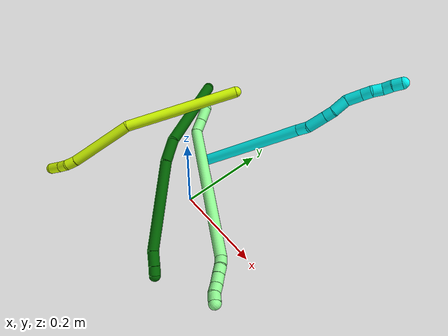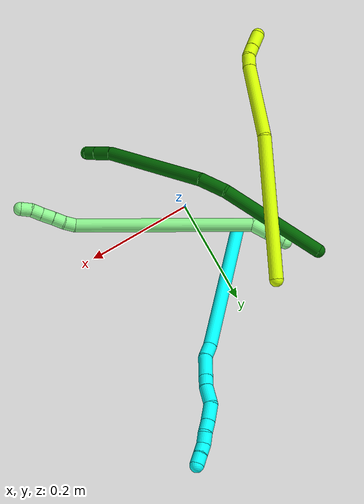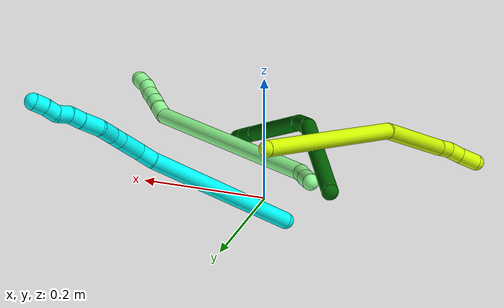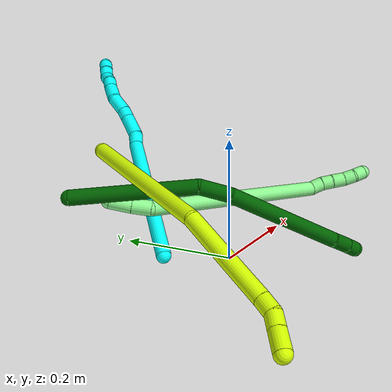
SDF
<sdf version="1.7">
 <world name="default">
  <model name="3">
   <static>0</static>
   <link name="3">
    <collision name="collision-cylinder-e_1_1_4">
     <pose>-0.007432 0.0337 0.125093 -0.263151 -0.057304 0.007586</pose>
     <geometry><cylinder><radius>0.0125</radius><length>0.259531</length></cylinder></geometry>
     <surface>
      <friction><ode><mu>1.16</mu><mu2>1.16</mu2><slip1>0</slip1><slip2>0</slip2></ode></friction>
      <contact><ode><kp>1e+06</kp><kd>1</kd><max_vel>0</max_vel><min_depth>0.001</min_depth></ode></contact>
     </surface>
    </collision>
    <visual name="visual-cylinder-e_1_1_4">
     <pose>-0.007432 0.0337 0.125093 -0.263151 -0.057304 0.007586</pose>
     <geometry><cylinder><radius>0.0125</radius><length>0.259531</length></cylinder></geometry>
     <material><ambient>0.003922 1 0.996078 1</ambient></material>
    </visual>
    <collision name="collision-cylinder-e_2_4_5">
     <pose>-0.013616 0.071825 0.262401 -0.347585 0.095783 -0.016828</pose>
     <geometry><cylinder><radius>0.0125</radius><length>0.026105</length></cylinder></geometry>
     <surface>
      <friction><ode><mu>1.16</mu><mu2>1.16</mu2><slip1>0</slip1><slip2>0</slip2></ode></friction>
      <contact><ode><kp>1e+06</kp><kd>1</kd><max_vel>0</max_vel><min_depth>0.001</min_depth></ode></contact>
     </surface>
    </collision>
    <visual name="visual-cylinder-e_2_4_5">
     <pose>-0.013616 0.071825 0.262401 -0.347585 0.095783 -0.016828</pose>
     <geometry><cylinder><radius>0.0125</radius><length>0.026105</length></cylinder></geometry>
     <material><ambient>0.003922 1 0.996078 1</ambient></material>
    </visual>
    <collision name="collision-cylinder-e_3_5_6">
     <pose>-0.013195 0.076774 0.296026 -0.02443 -0.03864 0.000472</pose>
     <geometry><cylinder><radius>0.0125</radius><length>0.042865</length></cylinder></geometry>
     <surface>
      <friction><ode><mu>1.16</mu><mu2>1.16</mu2><slip1>0</slip1><slip2>0</slip2></ode></friction>
      <contact><ode><kp>1e+06</kp><kd>1</kd><max_vel>0</max_vel><min_depth>0.001</min_depth></ode></contact>
     </surface>
    </collision>
    <visual name="visual-cylinder-e_3_5_6">
     <pose>-0.013195 0.076774 0.296026 -0.02443 -0.03864 0.000472</pose>
     <geometry><cylinder><radius>0.0125</radius><length>0.042865</length></cylinder></geometry>
     <material><ambient>0.003922 1 0.996078 1</ambient></material>
    </visual>
    <collision name="collision-cylinder-e_4_6_7">
     <pose>-0.014395 0.077422 0.327651 -0.012217 -0.036416 0.000222</pose>
     <geometry><cylinder><radius>0.0125</radius><length>0.020445</length></cylinder></geometry>
     <surface>
      <friction><ode><mu>1.16</mu><mu2>1.16</mu2><slip1>0</slip1><slip2>0</slip2></ode></friction>
      <contact><ode><kp>1e+06</kp><kd>1</kd><max_vel>0</max_vel><min_depth>0.001</min_depth></ode></contact>
     </surface>
    </collision>
    <visual name="visual-cylinder-e_4_6_7">
     <pose>-0.014395 0.077422 0.327651 -0.012217 -0.036416 0.000222</pose>
     <geometry><cylinder><radius>0.0125</radius><length>0.020445</length></cylinder></geometry>
     <material><ambient>0.003922 1 0.996078 1</ambient></material>
    </visual>
    <collision name="collision-cylinder-e_5_7_8">
     <pose>-0.016578 0.074567 0.354916 0.173028 -0.104216 -0.009047</pose>
     <geometry><cylinder><radius>0.0125</radius><length>0.034804</length></cylinder></geometry>
     <surface>
      <friction><ode><mu>1.16</mu><mu2>1.16</mu2><slip1>0</slip1><slip2>0</slip2></ode></friction>
      <contact><ode><kp>1e+06</kp><kd>1</kd><max_vel>0</max_vel><min_depth>0.001</min_depth></ode></contact>
     </surface>
    </collision>
    <visual name="visual-cylinder-e_5_7_8">
     <pose>-0.016578 0.074567 0.354916 0.173028 -0.104216 -0.009047</pose>
     <geometry><cylinder><radius>0.0125</radius><length>0.034804</length></cylinder></geometry>
     <material><ambient>0.003922 1 0.996078 1</ambient></material>
    </visual>
    <collision name="collision-cylinder-e_6_8_9">
     <pose>-0.020174 0.075298 0.388132 -0.225628 -0.10724 0.012161</pose>
     <geometry><cylinder><radius>0.0125</radius><length>0.033366</length></cylinder></geometry>
     <surface>
      <friction><ode><mu>1.16</mu><mu2>1.16</mu2><slip1>0</slip1><slip2>0</slip2></ode></friction>
      <contact><ode><kp>1e+06</kp><kd>1</kd><max_vel>0</max_vel><min_depth>0.001</min_depth></ode></contact>
     </surface>
    </collision>
    <visual name="visual-cylinder-e_6_8_9">
     <pose>-0.020174 0.075298 0.388132 -0.225628 -0.10724 0.012161</pose>
     <geometry><cylinder><radius>0.0125</radius><length>0.033366</length></cylinder></geometry>
     <material><ambient>0.003922 1 0.996078 1</ambient></material>
    </visual>
    <collision name="collision-cylinder-e_7_9_10">
     <pose>-0.02223 0.081791 0.414311 -0.271005 -0.025998 0.003545</pose>
     <geometry><cylinder><radius>0.0125</radius><length>0.020792</length></cylinder></geometry>
     <surface>
      <friction><ode><mu>1.16</mu><mu2>1.16</mu2><slip1>0</slip1><slip2>0</slip2></ode></friction>
      <contact><ode><kp>1e+06</kp><kd>1</kd><max_vel>0</max_vel><min_depth>0.001</min_depth></ode></contact>
     </surface>
    </collision>
    <visual name="visual-cylinder-e_7_9_10">
     <pose>-0.02223 0.081791 0.414311 -0.271005 -0.025998 0.003545</pose>
     <geometry><cylinder><radius>0.0125</radius><length>0.020792</length></cylinder></geometry>
     <material><ambient>0.003922 1 0.996078 1</ambient></material>
    </visual>
    <collision name="collision-cylinder-e_8_10_11">
     <pose>-0.026505 0.087522 0.433984 -0.296323 -0.377509 0.057009</pose>
     <geometry><cylinder><radius>0.0125</radius><length>0.021729</length></cylinder></geometry>
     <surface>
      <friction><ode><mu>1.16</mu><mu2>1.16</mu2><slip1>0</slip1><slip2>0</slip2></ode></friction>
      <contact><ode><kp>1e+06</kp><kd>1</kd><max_vel>0</max_vel><min_depth>0.001</min_depth></ode></contact>
     </surface>
    </collision>
    <visual name="visual-cylinder-e_8_10_11">
     <pose>-0.026505 0.087522 0.433984 -0.296323 -0.377509 0.057009</pose>
     <geometry><cylinder><radius>0.0125</radius><length>0.021729</length></cylinder></geometry>
     <material><ambient>0.003922 1 0.996078 1</ambient></material>
    </visual>
    <collision name="collision-cylinder-e_9_11_12">
     <pose>-0.029569 0.093422 0.453235 -0.298504 0.093449 -0.014062</pose>
     <geometry><cylinder><radius>0.0125</radius><length>0.020158</length></cylinder></geometry>
     <surface>
      <friction><ode><mu>1.16</mu><mu2>1.16</mu2><slip1>0</slip1><slip2>0</slip2></ode></friction>
      <contact><ode><kp>1e+06</kp><kd>1</kd><max_vel>0</max_vel><min_depth>0.001</min_depth></ode></contact>
     </surface>
    </collision>
    <visual name="visual-cylinder-e_9_11_12">
     <pose>-0.029569 0.093422 0.453235 -0.298504 0.093449 -0.014062</pose>
     <geometry><cylinder><radius>0.0125</radius><length>0.020158</length></cylinder></geometry>
     <material><ambient>0.003922 1 0.996078 1</ambient></material>
    </visual>
    <collision name="collision-cylinder-e_10_12_2">
     <pose>-0.029263 0.099896 0.472273 -0.356932 -0.062827 0.011337</pose>
     <geometry><cylinder><radius>0.0125</radius><length>0.020205</length></cylinder></geometry>
     <surface>
      <friction><ode><mu>1.16</mu><mu2>1.16</mu2><slip1>0</slip1><slip2>0</slip2></ode></friction>
      <contact><ode><kp>1e+06</kp><kd>1</kd><max_vel>0</max_vel><min_depth>0.001</min_depth></ode></contact>
     </surface>
    </collision>
    <visual name="visual-cylinder-e_10_12_2">
     <pose>-0.029263 0.099896 0.472273 -0.356932 -0.062827 0.011337</pose>
     <geometry><cylinder><radius>0.0125</radius><length>0.020205</length></cylinder></geometry>
     <material><ambient>0.003922 1 0.996078 1</ambient></material>
    </visual>
    <collision name="collision-sphere-2">
     <pose>-0.029897 0.103419 0.48172 0 -0 0</pose>
     <geometry><sphere><radius>0.0125</radius></sphere></geometry>
     <surface>
      <friction><ode><mu>1.16</mu><mu2>1.16</mu2><slip1>0</slip1><slip2>0</slip2></ode></friction>
      <contact><ode><kp>1e+06</kp><kd>1</kd><max_vel>0</max_vel><min_depth>0.001</min_depth></ode></contact>
     </surface>
    </collision>
    <visual name="visual-sphere-2">
     <pose>-0.029897 0.103419 0.48172 0 -0 0</pose>
     <geometry><sphere><radius>0.0125</radius></sphere></geometry>
     <material><ambient>0.003922 1 0.996078 1</ambient></material>
    </visual>
    <collision name="collision-sphere-12">
     <pose>-0.028628 0.096374 0.462826 0 -0 0</pose>
     <geometry><sphere><radius>0.0125</radius></sphere></geometry>
     <surface>
      <friction><ode><mu>1.16</mu><mu2>1.16</mu2><slip1>0</slip1><slip2>0</slip2></ode></friction>
      <contact><ode><kp>1e+06</kp><kd>1</kd><max_vel>0</max_vel><min_depth>0.001</min_depth></ode></contact>
     </surface>
    </collision>
    <visual name="visual-sphere-12">
     <pose>-0.028628 0.096374 0.462826 0 -0 0</pose>
     <geometry><sphere><radius>0.0125</radius></sphere></geometry>
     <material><ambient>0.003922 1 0.996078 1</ambient></material>
    </visual>
    <collision name="collision-sphere-11">
     <pose>-0.030509 0.090471 0.443643 0 -0 0</pose>
     <geometry><sphere><radius>0.0125</radius></sphere></geometry>
     <surface>
      <friction><ode><mu>1.16</mu><mu2>1.16</mu2><slip1>0</slip1><slip2>0</slip2></ode></friction>
      <contact><ode><kp>1e+06</kp><kd>1</kd><max_vel>0</max_vel><min_depth>0.001</min_depth></ode></contact>
     </surface>
    </collision>
    <visual name="visual-sphere-11">
     <pose>-0.030509 0.090471 0.443643 0 -0 0</pose>
     <geometry><sphere><radius>0.0125</radius></sphere></geometry>
     <material><ambient>0.003922 1 0.996078 1</ambient></material>
    </visual>
    <collision name="collision-sphere-10">
     <pose>-0.0225 0.084573 0.424325 0 -0 0</pose>
     <geometry><sphere><radius>0.0125</radius></sphere></geometry>
     <surface>
      <friction><ode><mu>1.16</mu><mu2>1.16</mu2><slip1>0</slip1><slip2>0</slip2></ode></friction>
      <contact><ode><kp>1e+06</kp><kd>1</kd><max_vel>0</max_vel><min_depth>0.001</min_depth></ode></contact>
     </surface>
    </collision>
    <visual name="visual-sphere-10">
     <pose>-0.0225 0.084573 0.424325 0 -0 0</pose>
     <geometry><sphere><radius>0.0125</radius></sphere></geometry>
     <material><ambient>0.003922 1 0.996078 1</ambient></material>
    </visual>
    <collision name="collision-sphere-9">
     <pose>-0.02196 0.079009 0.404298 0 -0 0</pose>
     <geometry><sphere><radius>0.0125</radius></sphere></geometry>
     <surface>
      <friction><ode><mu>1.16</mu><mu2>1.16</mu2><slip1>0</slip1><slip2>0</slip2></ode></friction>
      <contact><ode><kp>1e+06</kp><kd>1</kd><max_vel>0</max_vel><min_depth>0.001</min_depth></ode></contact>
     </surface>
    </collision>
    <visual name="visual-sphere-9">
     <pose>-0.02196 0.079009 0.404298 0 -0 0</pose>
     <geometry><sphere><radius>0.0125</radius></sphere></geometry>
     <material><ambient>0.003922 1 0.996078 1</ambient></material>
    </visual>
    <collision name="collision-sphere-4">
     <pose>-0.014864 0.0674 0.250185 0 -0 0</pose>
     <geometry><sphere><radius>0.0125</radius></sphere></geometry>
     <surface>
      <friction><ode><mu>1.16</mu><mu2>1.16</mu2><slip1>0</slip1><slip2>0</slip2></ode></friction>
      <contact><ode><kp>1e+06</kp><kd>1</kd><max_vel>0</max_vel><min_depth>0.001</min_depth></ode></contact>
     </surface>
    </collision>
    <visual name="visual-sphere-4">
     <pose>-0.014864 0.0674 0.250185 0 -0 0</pose>
     <geometry><sphere><radius>0.0125</radius></sphere></geometry>
     <material><ambient>0.003922 1 0.996078 1</ambient></material>
    </visual>
    <collision name="collision-sphere-1">
     <geometry><sphere><radius>0.0125</radius></sphere></geometry>
     <surface>
      <friction><ode><mu>1.16</mu><mu2>1.16</mu2><slip1>0</slip1><slip2>0</slip2></ode></friction>
      <contact><ode><kp>1e+06</kp><kd>1</kd><max_vel>0</max_vel><min_depth>0.001</min_depth></ode></contact>
     </surface>
    </collision>
    <visual name="visual-sphere-1">
     <geometry><sphere><radius>0.0125</radius></sphere></geometry>
     <material><ambient>0.003922 1 0.996078 1</ambient></material>
    </visual>
    <collision name="collision-sphere-8">
     <pose>-0.018388 0.071587 0.371965 0 -0 0</pose>
     <geometry><sphere><radius>0.0125</radius></sphere></geometry>
     <surface>
      <friction><ode><mu>1.16</mu><mu2>1.16</mu2><slip1>0</slip1><slip2>0</slip2></ode></friction>
      <contact><ode><kp>1e+06</kp><kd>1</kd><max_vel>0</max_vel><min_depth>0.001</min_depth></ode></contact>
     </surface>
    </collision>
    <visual name="visual-sphere-8">
     <pose>-0.018388 0.071587 0.371965 0 -0 0</pose>
     <geometry><sphere><radius>0.0125</radius></sphere></geometry>
     <material><ambient>0.003922 1 0.996078 1</ambient></material>
    </visual>
    <collision name="collision-sphere-5">
     <pose>-0.012367 0.076251 0.274616 0 -0 0</pose>
     <geometry><sphere><radius>0.0125</radius></sphere></geometry>
     <surface>
      <friction><ode><mu>1.16</mu><mu2>1.16</mu2><slip1>0</slip1><slip2>0</slip2></ode></friction>
      <contact><ode><kp>1e+06</kp><kd>1</kd><max_vel>0</max_vel><min_depth>0.001</min_depth></ode></contact>
     </surface>
    </collision>
    <visual name="visual-sphere-5">
     <pose>-0.012367 0.076251 0.274616 0 -0 0</pose>
     <geometry><sphere><radius>0.0125</radius></sphere></geometry>
     <material><ambient>0.003922 1 0.996078 1</ambient></material>
    </visual>
    <collision name="collision-sphere-6">
     <pose>-0.014023 0.077297 0.317436 0 -0 0</pose>
     <geometry><sphere><radius>0.0125</radius></sphere></geometry>
     <surface>
      <friction><ode><mu>1.16</mu><mu2>1.16</mu2><slip1>0</slip1><slip2>0</slip2></ode></friction>
      <contact><ode><kp>1e+06</kp><kd>1</kd><max_vel>0</max_vel><min_depth>0.001</min_depth></ode></contact>
     </surface>
    </collision>
    <visual name="visual-sphere-6">
     <pose>-0.014023 0.077297 0.317436 0 -0 0</pose>
     <geometry><sphere><radius>0.0125</radius></sphere></geometry>
     <material><ambient>0.003922 1 0.996078 1</ambient></material>
    </visual>
    <collision name="collision-sphere-7">
     <pose>-0.014768 0.077547 0.337866 0 -0 0</pose>
     <geometry><sphere><radius>0.0125</radius></sphere></geometry>
     <surface>
      <friction><ode><mu>1.16</mu><mu2>1.16</mu2><slip1>0</slip1><slip2>0</slip2></ode></friction>
      <contact><ode><kp>1e+06</kp><kd>1</kd><max_vel>0</max_vel><min_depth>0.001</min_depth></ode></contact>
     </surface>
    </collision>
    <visual name="visual-sphere-7">
     <pose>-0.014768 0.077547 0.337866 0 -0 0</pose>
     <geometry><sphere><radius>0.0125</radius></sphere></geometry>
     <material><ambient>0.003922 1 0.996078 1</ambient></material>
    </visual>
    <inertial>
     <pose>-0.013239 0.056213 0.241459 0 -0 0</pose>
     <mass>0.5</mass>
     <inertia>
      <ixx>0.001501</ixx>
      <ixy>0</ixy>
      <ixz>0</ixz>
      <iyy>0.001463</iyy>
      <iyz>0</iyz>
      <izz>-0.000261</izz>
     </inertia>
    </inertial>
   </link>
   <pose>-0.064577 0.087558 0.011498 -0.283644 -0.801096 -1.68131</pose>
  </model>
  <model name="6">
   <static>0</static>
   <link name="6">
    <collision name="collision-cylinder-e_1_1_4">
     <pose>0.054782 -0.074267 0.039167 1.08548 0.578096 0.354958</pose>
     <geometry><cylinder><radius>0.0125</radius><length>0.200507</length></cylinder></geometry>
     <surface>
      <friction><ode><mu>1.16</mu><mu2>1.16</mu2><slip1>0</slip1><slip2>0</slip2></ode></friction>
      <contact><ode><kp>1e+06</kp><kd>1</kd><max_vel>0</max_vel><min_depth>0.001</min_depth></ode></contact>
     </surface>
    </collision>
    <visual name="visual-cylinder-e_1_1_4">
     <pose>0.054782 -0.074267 0.039167 1.08548 0.578096 0.354958</pose>
     <geometry><cylinder><radius>0.0125</radius><length>0.200507</length></cylinder></geometry>
     <material><ambient>0 0.392157 0.003922 1</ambient></material>
    </visual>
    <collision name="collision-cylinder-e_2_4_5">
     <pose>0.128273 -0.159441 0.092396 0.659697 0.810457 0.291636</pose>
     <geometry><cylinder><radius>0.0125</radius><length>0.051643</length></cylinder></geometry>
     <surface>
      <friction><ode><mu>1.16</mu><mu2>1.16</mu2><slip1>0</slip1><slip2>0</slip2></ode></friction>
      <contact><ode><kp>1e+06</kp><kd>1</kd><max_vel>0</max_vel><min_depth>0.001</min_depth></ode></contact>
     </surface>
    </collision>
    <visual name="visual-cylinder-e_2_4_5">
     <pose>0.128273 -0.159441 0.092396 0.659697 0.810457 0.291636</pose>
     <geometry><cylinder><radius>0.0125</radius><length>0.051643</length></cylinder></geometry>
     <material><ambient>0 0.392157 0.003922 1</ambient></material>
    </visual>
    <collision name="collision-cylinder-e_3_5_6">
     <pose>0.218146 -0.192779 0.169665 0.341019 0.815002 0.148376</pose>
     <geometry><cylinder><radius>0.0125</radius><length>0.195576</length></cylinder></geometry>
     <surface>
      <friction><ode><mu>1.16</mu><mu2>1.16</mu2><slip1>0</slip1><slip2>0</slip2></ode></friction>
      <contact><ode><kp>1e+06</kp><kd>1</kd><max_vel>0</max_vel><min_depth>0.001</min_depth></ode></contact>
     </surface>
    </collision>
    <visual name="visual-cylinder-e_3_5_6">
     <pose>0.218146 -0.192779 0.169665 0.341019 0.815002 0.148376</pose>
     <geometry><cylinder><radius>0.0125</radius><length>0.195576</length></cylinder></geometry>
     <material><ambient>0 0.392157 0.003922 1</ambient></material>
    </visual>
    <collision name="collision-cylinder-e_4_6_7">
     <pose>0.298656 -0.21748 0.245723 0.174864 0.621523 0.056289</pose>
     <geometry><cylinder><radius>0.0125</radius><length>0.032103</length></cylinder></geometry>
     <surface>
      <friction><ode><mu>1.16</mu><mu2>1.16</mu2><slip1>0</slip1><slip2>0</slip2></ode></friction>
      <contact><ode><kp>1e+06</kp><kd>1</kd><max_vel>0</max_vel><min_depth>0.001</min_depth></ode></contact>
     </surface>
    </collision>
    <visual name="visual-cylinder-e_4_6_7">
     <pose>0.298656 -0.21748 0.245723 0.174864 0.621523 0.056289</pose>
     <geometry><cylinder><radius>0.0125</radius><length>0.032103</length></cylinder></geometry>
     <material><ambient>0 0.392157 0.003922 1</ambient></material>
    </visual>
    <collision name="collision-cylinder-e_5_7_2">
     <pose>0.314177 -0.22093 0.26646 0.148459 0.658895 0.050842</pose>
     <geometry><cylinder><radius>0.0125</radius><length>0.020172</length></cylinder></geometry>
     <surface>
      <friction><ode><mu>1.16</mu><mu2>1.16</mu2><slip1>0</slip1><slip2>0</slip2></ode></friction>
      <contact><ode><kp>1e+06</kp><kd>1</kd><max_vel>0</max_vel><min_depth>0.001</min_depth></ode></contact>
     </surface>
    </collision>
    <visual name="visual-cylinder-e_5_7_2">
     <pose>0.314177 -0.22093 0.26646 0.148459 0.658895 0.050842</pose>
     <geometry><cylinder><radius>0.0125</radius><length>0.020172</length></cylinder></geometry>
     <material><ambient>0 0.392157 0.003922 1</ambient></material>
    </visual>
    <collision name="collision-sphere-2">
     <pose>0.320352 -0.22211 0.274347 0 -0 0</pose>
     <geometry><sphere><radius>0.0125</radius></sphere></geometry>
     <surface>
      <friction><ode><mu>1.16</mu><mu2>1.16</mu2><slip1>0</slip1><slip2>0</slip2></ode></friction>
      <contact><ode><kp>1e+06</kp><kd>1</kd><max_vel>0</max_vel><min_depth>0.001</min_depth></ode></contact>
     </surface>
    </collision>
    <visual name="visual-sphere-2">
     <pose>0.320352 -0.22211 0.274347 0 -0 0</pose>
     <geometry><sphere><radius>0.0125</radius></sphere></geometry>
     <material><ambient>0 0.392157 0.003922 1</ambient></material>
    </visual>
    <collision name="collision-sphere-7">
     <pose>0.308002 -0.219751 0.258573 0 -0 0</pose>
     <geometry><sphere><radius>0.0125</radius></sphere></geometry>
     <surface>
      <friction><ode><mu>1.16</mu><mu2>1.16</mu2><slip1>0</slip1><slip2>0</slip2></ode></friction>
      <contact><ode><kp>1e+06</kp><kd>1</kd><max_vel>0</max_vel><min_depth>0.001</min_depth></ode></contact>
     </surface>
    </collision>
    <visual name="visual-sphere-7">
     <pose>0.308002 -0.219751 0.258573 0 -0 0</pose>
     <geometry><sphere><radius>0.0125</radius></sphere></geometry>
     <material><ambient>0 0.392157 0.003922 1</ambient></material>
    </visual>
    <collision name="collision-sphere-6">
     <pose>0.289309 -0.21521 0.232872 0 -0 0</pose>
     <geometry><sphere><radius>0.0125</radius></sphere></geometry>
     <surface>
      <friction><ode><mu>1.16</mu><mu2>1.16</mu2><slip1>0</slip1><slip2>0</slip2></ode></friction>
      <contact><ode><kp>1e+06</kp><kd>1</kd><max_vel>0</max_vel><min_depth>0.001</min_depth></ode></contact>
     </surface>
    </collision>
    <visual name="visual-sphere-6">
     <pose>0.289309 -0.21521 0.232872 0 -0 0</pose>
     <geometry><sphere><radius>0.0125</radius></sphere></geometry>
     <material><ambient>0 0.392157 0.003922 1</ambient></material>
    </visual>
    <collision name="collision-sphere-5">
     <pose>0.146983 -0.170347 0.106457 0 -0 0</pose>
     <geometry><sphere><radius>0.0125</radius></sphere></geometry>
     <surface>
      <friction><ode><mu>1.16</mu><mu2>1.16</mu2><slip1>0</slip1><slip2>0</slip2></ode></friction>
      <contact><ode><kp>1e+06</kp><kd>1</kd><max_vel>0</max_vel><min_depth>0.001</min_depth></ode></contact>
     </surface>
    </collision>
    <visual name="visual-sphere-5">
     <pose>0.146983 -0.170347 0.106457 0 -0 0</pose>
     <geometry><sphere><radius>0.0125</radius></sphere></geometry>
     <material><ambient>0 0.392157 0.003922 1</ambient></material>
    </visual>
    <collision name="collision-sphere-1">
     <geometry><sphere><radius>0.0125</radius></sphere></geometry>
     <surface>
      <friction><ode><mu>1.16</mu><mu2>1.16</mu2><slip1>0</slip1><slip2>0</slip2></ode></friction>
      <contact><ode><kp>1e+06</kp><kd>1</kd><max_vel>0</max_vel><min_depth>0.001</min_depth></ode></contact>
     </surface>
    </collision>
    <visual name="visual-sphere-1">
     <geometry><sphere><radius>0.0125</radius></sphere></geometry>
     <material><ambient>0 0.392157 0.003922 1</ambient></material>
    </visual>
    <collision name="collision-sphere-4">
     <pose>0.109563 -0.148535 0.078335 0 -0 0</pose>
     <geometry><sphere><radius>0.0125</radius></sphere></geometry>
     <surface>
      <friction><ode><mu>1.16</mu><mu2>1.16</mu2><slip1>0</slip1><slip2>0</slip2></ode></friction>
      <contact><ode><kp>1e+06</kp><kd>1</kd><max_vel>0</max_vel><min_depth>0.001</min_depth></ode></contact>
     </surface>
    </collision>
    <visual name="visual-sphere-4">
     <pose>0.109563 -0.148535 0.078335 0 -0 0</pose>
     <geometry><sphere><radius>0.0125</radius></sphere></geometry>
     <material><ambient>0 0.392157 0.003922 1</ambient></material>
    </visual>
    <inertial>
     <pose>0.152396 -0.144532 0.118141 0 -0 0</pose>
     <mass>0.5</mass>
     <inertia>
      <ixx>0.001265</ixx>
      <ixy>0</ixy>
      <ixz>0</ixz>
      <iyy>0.001287</iyy>
      <iyz>0</iyz>
      <izz>-0.000168</izz>
     </inertia>
    </inertial>
   </link>
   <pose>-0.167703 0.19162 0.121654 -1.83896 0.735879 -1.70193</pose>
  </model>
  <model name="13">
   <static>0</static>
   <link name="13">
    <collision name="collision-cylinder-e_1_1_4">
     <pose>0.008145 -0.015574 -0.003712 1.80476 0.470633 0.589538</pose>
     <geometry><cylinder><radius>0.0125</radius><length>0.035925</length></cylinder></geometry>
     <surface>
      <friction><ode><mu>1.16</mu><mu2>1.16</mu2><slip1>0</slip1><slip2>0</slip2></ode></friction>
      <contact><ode><kp>1e+06</kp><kd>1</kd><max_vel>0</max_vel><min_depth>0.001</min_depth></ode></contact>
     </surface>
    </collision>
    <visual name="visual-cylinder-e_1_1_4">
     <pose>0.008145 -0.015574 -0.003712 1.80476 0.470633 0.589538</pose>
     <geometry><cylinder><radius>0.0125</radius><length>0.035925</length></cylinder></geometry>
     <material><ambient>0.564706 0.984314 0.572549 1</ambient></material>
    </visual>
    <collision name="collision-cylinder-e_2_4_5">
     <pose>0.024227 -0.044527 -0.009895 1.75349 0.528055 0.628212</pose>
     <geometry><cylinder><radius>0.0125</radius><length>0.031503</length></cylinder></geometry>
     <surface>
      <friction><ode><mu>1.16</mu><mu2>1.16</mu2><slip1>0</slip1><slip2>0</slip2></ode></friction>
      <contact><ode><kp>1e+06</kp><kd>1</kd><max_vel>0</max_vel><min_depth>0.001</min_depth></ode></contact>
     </surface>
    </collision>
    <visual name="visual-cylinder-e_2_4_5">
     <pose>0.024227 -0.044527 -0.009895 1.75349 0.528055 0.628212</pose>
     <geometry><cylinder><radius>0.0125</radius><length>0.031503</length></cylinder></geometry>
     <material><ambient>0.564706 0.984314 0.572549 1</ambient></material>
    </visual>
    <collision name="collision-cylinder-e_3_5_6">
     <pose>0.158936 -0.138059 -0.076427 2.24506 0.890366 1.56289</pose>
     <geometry><cylinder><radius>0.0125</radius><length>0.326187</length></cylinder></geometry>
     <surface>
      <friction><ode><mu>1.16</mu><mu2>1.16</mu2><slip1>0</slip1><slip2>0</slip2></ode></friction>
      <contact><ode><kp>1e+06</kp><kd>1</kd><max_vel>0</max_vel><min_depth>0.001</min_depth></ode></contact>
     </surface>
    </collision>
    <visual name="visual-cylinder-e_3_5_6">
     <pose>0.158936 -0.138059 -0.076427 2.24506 0.890366 1.56289</pose>
     <geometry><cylinder><radius>0.0125</radius><length>0.326187</length></cylinder></geometry>
     <material><ambient>0.564706 0.984314 0.572549 1</ambient></material>
    </visual>
    <collision name="collision-cylinder-e_4_6_7">
     <pose>0.295379 -0.223611 -0.139975 1.47637 1.05963 0.979118</pose>
     <geometry><cylinder><radius>0.0125</radius><length>0.022174</length></cylinder></geometry>
     <surface>
      <friction><ode><mu>1.16</mu><mu2>1.16</mu2><slip1>0</slip1><slip2>0</slip2></ode></friction>
      <contact><ode><kp>1e+06</kp><kd>1</kd><max_vel>0</max_vel><min_depth>0.001</min_depth></ode></contact>
     </surface>
    </collision>
    <visual name="visual-cylinder-e_4_6_7">
     <pose>0.295379 -0.223611 -0.139975 1.47637 1.05963 0.979118</pose>
     <geometry><cylinder><radius>0.0125</radius><length>0.022174</length></cylinder></geometry>
     <material><ambient>0.564706 0.984314 0.572549 1</ambient></material>
    </visual>
    <collision name="collision-cylinder-e_5_7_8">
     <pose>0.312686 -0.235762 -0.139447 1.56835 0.846919 0.845092</pose>
     <geometry><cylinder><radius>0.0125</radius><length>0.020388</length></cylinder></geometry>
     <surface>
      <friction><ode><mu>1.16</mu><mu2>1.16</mu2><slip1>0</slip1><slip2>0</slip2></ode></friction>
      <contact><ode><kp>1e+06</kp><kd>1</kd><max_vel>0</max_vel><min_depth>0.001</min_depth></ode></contact>
     </surface>
    </collision>
    <visual name="visual-cylinder-e_5_7_8">
     <pose>0.312686 -0.235762 -0.139447 1.56835 0.846919 0.845092</pose>
     <geometry><cylinder><radius>0.0125</radius><length>0.020388</length></cylinder></geometry>
     <material><ambient>0.564706 0.984314 0.572549 1</ambient></material>
    </visual>
    <collision name="collision-cylinder-e_6_8_9">
     <pose>0.32908 -0.250039 -0.139977 1.64325 0.859567 0.915793</pose>
     <geometry><cylinder><radius>0.0125</radius><length>0.023117</length></cylinder></geometry>
     <surface>
      <friction><ode><mu>1.16</mu><mu2>1.16</mu2><slip1>0</slip1><slip2>0</slip2></ode></friction>
      <contact><ode><kp>1e+06</kp><kd>1</kd><max_vel>0</max_vel><min_depth>0.001</min_depth></ode></contact>
     </surface>
    </collision>
    <visual name="visual-cylinder-e_6_8_9">
     <pose>0.32908 -0.250039 -0.139977 1.64325 0.859567 0.915793</pose>
     <geometry><cylinder><radius>0.0125</radius><length>0.023117</length></cylinder></geometry>
     <material><ambient>0.564706 0.984314 0.572549 1</ambient></material>
    </visual>
    <collision name="collision-cylinder-e_7_9_10">
     <pose>0.345875 -0.263756 -0.139537 1.41292 0.908405 0.789582</pose>
     <geometry><cylinder><radius>0.0125</radius><length>0.020389</length></cylinder></geometry>
     <surface>
      <friction><ode><mu>1.16</mu><mu2>1.16</mu2><slip1>0</slip1><slip2>0</slip2></ode></friction>
      <contact><ode><kp>1e+06</kp><kd>1</kd><max_vel>0</max_vel><min_depth>0.001</min_depth></ode></contact>
     </surface>
    </collision>
    <visual name="visual-cylinder-e_7_9_10">
     <pose>0.345875 -0.263756 -0.139537 1.41292 0.908405 0.789582</pose>
     <geometry><cylinder><radius>0.0125</radius><length>0.020389</length></cylinder></geometry>
     <material><ambient>0.564706 0.984314 0.572549 1</ambient></material>
    </visual>
    <collision name="collision-cylinder-e_8_10_2">
     <pose>0.362886 -0.274524 -0.139875 1.85217 1.08266 1.34903</pose>
     <geometry><cylinder><radius>0.0125</radius><length>0.020317</length></cylinder></geometry>
     <surface>
      <friction><ode><mu>1.16</mu><mu2>1.16</mu2><slip1>0</slip1><slip2>0</slip2></ode></friction>
      <contact><ode><kp>1e+06</kp><kd>1</kd><max_vel>0</max_vel><min_depth>0.001</min_depth></ode></contact>
     </surface>
    </collision>
    <visual name="visual-cylinder-e_8_10_2">
     <pose>0.362886 -0.274524 -0.139875 1.85217 1.08266 1.34903</pose>
     <geometry><cylinder><radius>0.0125</radius><length>0.020317</length></cylinder></geometry>
     <material><ambient>0.564706 0.984314 0.572549 1</ambient></material>
    </visual>
    <collision name="collision-sphere-2">
     <pose>0.371858 -0.279101 -0.141197 0 -0 0</pose>
     <geometry><sphere><radius>0.0125</radius></sphere></geometry>
     <surface>
      <friction><ode><mu>1.16</mu><mu2>1.16</mu2><slip1>0</slip1><slip2>0</slip2></ode></friction>
      <contact><ode><kp>1e+06</kp><kd>1</kd><max_vel>0</max_vel><min_depth>0.001</min_depth></ode></contact>
     </surface>
    </collision>
    <visual name="visual-sphere-2">
     <pose>0.371858 -0.279101 -0.141197 0 -0 0</pose>
     <geometry><sphere><radius>0.0125</radius></sphere></geometry>
     <material><ambient>0.564706 0.984314 0.572549 1</ambient></material>
    </visual>
    <collision name="collision-sphere-10">
     <pose>0.353914 -0.269947 -0.138552 0 -0 0</pose>
     <geometry><sphere><radius>0.0125</radius></sphere></geometry>
     <surface>
      <friction><ode><mu>1.16</mu><mu2>1.16</mu2><slip1>0</slip1><slip2>0</slip2></ode></friction>
      <contact><ode><kp>1e+06</kp><kd>1</kd><max_vel>0</max_vel><min_depth>0.001</min_depth></ode></contact>
     </surface>
    </collision>
    <visual name="visual-sphere-10">
     <pose>0.353914 -0.269947 -0.138552 0 -0 0</pose>
     <geometry><sphere><radius>0.0125</radius></sphere></geometry>
     <material><ambient>0.564706 0.984314 0.572549 1</ambient></material>
    </visual>
    <collision name="collision-sphere-9">
     <pose>0.337837 -0.257564 -0.140523 0 -0 0</pose>
     <geometry><sphere><radius>0.0125</radius></sphere></geometry>
     <surface>
      <friction><ode><mu>1.16</mu><mu2>1.16</mu2><slip1>0</slip1><slip2>0</slip2></ode></friction>
      <contact><ode><kp>1e+06</kp><kd>1</kd><max_vel>0</max_vel><min_depth>0.001</min_depth></ode></contact>
     </surface>
    </collision>
    <visual name="visual-sphere-9">
     <pose>0.337837 -0.257564 -0.140523 0 -0 0</pose>
     <geometry><sphere><radius>0.0125</radius></sphere></geometry>
     <material><ambient>0.564706 0.984314 0.572549 1</ambient></material>
    </visual>
    <collision name="collision-sphere-4">
     <pose>0.01629 -0.031147 -0.007423 0 -0 0</pose>
     <geometry><sphere><radius>0.0125</radius></sphere></geometry>
     <surface>
      <friction><ode><mu>1.16</mu><mu2>1.16</mu2><slip1>0</slip1><slip2>0</slip2></ode></friction>
      <contact><ode><kp>1e+06</kp><kd>1</kd><max_vel>0</max_vel><min_depth>0.001</min_depth></ode></contact>
     </surface>
    </collision>
    <visual name="visual-sphere-4">
     <pose>0.01629 -0.031147 -0.007423 0 -0 0</pose>
     <geometry><sphere><radius>0.0125</radius></sphere></geometry>
     <material><ambient>0.564706 0.984314 0.572549 1</ambient></material>
    </visual>
    <collision name="collision-sphere-1">
     <geometry><sphere><radius>0.0125</radius></sphere></geometry>
     <surface>
      <friction><ode><mu>1.16</mu><mu2>1.16</mu2><slip1>0</slip1><slip2>0</slip2></ode></friction>
      <contact><ode><kp>1e+06</kp><kd>1</kd><max_vel>0</max_vel><min_depth>0.001</min_depth></ode></contact>
     </surface>
    </collision>
    <visual name="visual-sphere-1">
     <geometry><sphere><radius>0.0125</radius></sphere></geometry>
     <material><ambient>0.564706 0.984314 0.572549 1</ambient></material>
    </visual>
    <collision name="collision-sphere-8">
     <pose>0.320324 -0.242513 -0.139431 0 -0 0</pose>
     <geometry><sphere><radius>0.0125</radius></sphere></geometry>
     <surface>
      <friction><ode><mu>1.16</mu><mu2>1.16</mu2><slip1>0</slip1><slip2>0</slip2></ode></friction>
      <contact><ode><kp>1e+06</kp><kd>1</kd><max_vel>0</max_vel><min_depth>0.001</min_depth></ode></contact>
     </surface>
    </collision>
    <visual name="visual-sphere-8">
     <pose>0.320324 -0.242513 -0.139431 0 -0 0</pose>
     <geometry><sphere><radius>0.0125</radius></sphere></geometry>
     <material><ambient>0.564706 0.984314 0.572549 1</ambient></material>
    </visual>
    <collision name="collision-sphere-5">
     <pose>0.032163 -0.057906 -0.012367 0 -0 0</pose>
     <geometry><sphere><radius>0.0125</radius></sphere></geometry>
     <surface>
      <friction><ode><mu>1.16</mu><mu2>1.16</mu2><slip1>0</slip1><slip2>0</slip2></ode></friction>
      <contact><ode><kp>1e+06</kp><kd>1</kd><max_vel>0</max_vel><min_depth>0.001</min_depth></ode></contact>
     </surface>
    </collision>
    <visual name="visual-sphere-5">
     <pose>0.032163 -0.057906 -0.012367 0 -0 0</pose>
     <geometry><sphere><radius>0.0125</radius></sphere></geometry>
     <material><ambient>0.564706 0.984314 0.572549 1</ambient></material>
    </visual>
    <collision name="collision-sphere-6">
     <pose>0.285709 -0.218212 -0.140487 0 -0 0</pose>
     <geometry><sphere><radius>0.0125</radius></sphere></geometry>
     <surface>
      <friction><ode><mu>1.16</mu><mu2>1.16</mu2><slip1>0</slip1><slip2>0</slip2></ode></friction>
      <contact><ode><kp>1e+06</kp><kd>1</kd><max_vel>0</max_vel><min_depth>0.001</min_depth></ode></contact>
     </surface>
    </collision>
    <visual name="visual-sphere-6">
     <pose>0.285709 -0.218212 -0.140487 0 -0 0</pose>
     <geometry><sphere><radius>0.0125</radius></sphere></geometry>
     <material><ambient>0.564706 0.984314 0.572549 1</ambient></material>
    </visual>
    <collision name="collision-sphere-7">
     <pose>0.305048 -0.229011 -0.139464 0 -0 0</pose>
     <geometry><sphere><radius>0.0125</radius></sphere></geometry>
     <surface>
      <friction><ode><mu>1.16</mu><mu2>1.16</mu2><slip1>0</slip1><slip2>0</slip2></ode></friction>
      <contact><ode><kp>1e+06</kp><kd>1</kd><max_vel>0</max_vel><min_depth>0.001</min_depth></ode></contact>
     </surface>
    </collision>
    <visual name="visual-sphere-7">
     <pose>0.305048 -0.229011 -0.139464 0 -0 0</pose>
     <geometry><sphere><radius>0.0125</radius></sphere></geometry>
     <material><ambient>0.564706 0.984314 0.572549 1</ambient></material>
    </visual>
    <inertial>
     <pose>0.175711 -0.146991 -0.080488 0 -0 0</pose>
     <mass>0.5</mass>
     <inertia>
      <ixx>0.001889</ixx>
      <ixy>0</ixy>
      <ixz>0</ixz>
      <iyy>0.00357</iyy>
      <iyz>0</iyz>
      <izz>-0.00084</izz>
     </inertia>
    </inertial>
   </link>
   <pose>-0.124107 0.148618 0.111615 0.499021 -0.596854 -0.27281</pose>
  </model>
  <model name="15">
   <static>0</static>
   <link name="15">
    <collision name="collision-cylinder-e_1_1_4">
     <pose>-0.04675 -0.097573 0.07522 0.914051 -0.362678 -0.179841</pose>
     <geometry><cylinder><radius>0.0125</radius><length>0.263546</length></cylinder></geometry>
     <surface>
      <friction><ode><mu>1.16</mu><mu2>1.16</mu2><slip1>0</slip1><slip2>0</slip2></ode></friction>
      <contact><ode><kp>1e+06</kp><kd>1</kd><max_vel>0</max_vel><min_depth>0.001</min_depth></ode></contact>
     </surface>
    </collision>
    <visual name="visual-cylinder-e_1_1_4">
     <pose>-0.04675 -0.097573 0.07522 0.914051 -0.362678 -0.179841</pose>
     <geometry><cylinder><radius>0.0125</radius><length>0.263546</length></cylinder></geometry>
     <material><ambient>0.835294 1 0 1</ambient></material>
    </visual>
    <collision name="collision-cylinder-e_2_4_5">
     <pose>-0.125789 -0.261619 0.172496 1.25042 -0.431986 -0.314139</pose>
     <geometry><cylinder><radius>0.0125</radius><length>0.154242</length></cylinder></geometry>
     <surface>
      <friction><ode><mu>1.16</mu><mu2>1.16</mu2><slip1>0</slip1><slip2>0</slip2></ode></friction>
      <contact><ode><kp>1e+06</kp><kd>1</kd><max_vel>0</max_vel><min_depth>0.001</min_depth></ode></contact>
     </surface>
    </collision>
    <visual name="visual-cylinder-e_2_4_5">
     <pose>-0.125789 -0.261619 0.172496 1.25042 -0.431986 -0.314139</pose>
     <geometry><cylinder><radius>0.0125</radius><length>0.154242</length></cylinder></geometry>
     <material><ambient>0.835294 1 0 1</ambient></material>
    </visual>
    <collision name="collision-cylinder-e_3_5_6">
     <pose>-0.164253 -0.338063 0.199351 1.12228 -0.50896 -0.324121</pose>
     <geometry><cylinder><radius>0.0125</radius><length>0.025343</length></cylinder></geometry>
     <surface>
      <friction><ode><mu>1.16</mu><mu2>1.16</mu2><slip1>0</slip1><slip2>0</slip2></ode></friction>
      <contact><ode><kp>1e+06</kp><kd>1</kd><max_vel>0</max_vel><min_depth>0.001</min_depth></ode></contact>
     </surface>
    </collision>
    <visual name="visual-cylinder-e_3_5_6">
     <pose>-0.164253 -0.338063 0.199351 1.12228 -0.50896 -0.324121</pose>
     <geometry><cylinder><radius>0.0125</radius><length>0.025343</length></cylinder></geometry>
     <material><ambient>0.835294 1 0 1</ambient></material>
    </visual>
    <collision name="collision-cylinder-e_4_6_7">
     <pose>-0.179739 -0.354676 0.207302 1.12755 -0.902445 -0.594546</pose>
     <geometry><cylinder><radius>0.0125</radius><length>0.02373</length></cylinder></geometry>
     <surface>
      <friction><ode><mu>1.16</mu><mu2>1.16</mu2><slip1>0</slip1><slip2>0</slip2></ode></friction>
      <contact><ode><kp>1e+06</kp><kd>1</kd><max_vel>0</max_vel><min_depth>0.001</min_depth></ode></contact>
     </surface>
    </collision>
    <visual name="visual-cylinder-e_4_6_7">
     <pose>-0.179739 -0.354676 0.207302 1.12755 -0.902445 -0.594546</pose>
     <geometry><cylinder><radius>0.0125</radius><length>0.02373</length></cylinder></geometry>
     <material><ambient>0.835294 1 0 1</ambient></material>
    </visual>
    <collision name="collision-cylinder-e_5_7_2">
     <pose>-0.20201 -0.370131 0.215836 1.0227 -0.898003 -0.52811</pose>
     <geometry><cylinder><radius>0.0125</radius><length>0.033139</length></cylinder></geometry>
     <surface>
      <friction><ode><mu>1.16</mu><mu2>1.16</mu2><slip1>0</slip1><slip2>0</slip2></ode></friction>
      <contact><ode><kp>1e+06</kp><kd>1</kd><max_vel>0</max_vel><min_depth>0.001</min_depth></ode></contact>
     </surface>
    </collision>
    <visual name="visual-cylinder-e_5_7_2">
     <pose>-0.20201 -0.370131 0.215836 1.0227 -0.898003 -0.52811</pose>
     <geometry><cylinder><radius>0.0125</radius><length>0.033139</length></cylinder></geometry>
     <material><ambient>0.835294 1 0 1</ambient></material>
    </visual>
    <collision name="collision-sphere-2">
     <pose>-0.214968 -0.378944 0.221216 0 -0 0</pose>
     <geometry><sphere><radius>0.0125</radius></sphere></geometry>
     <surface>
      <friction><ode><mu>1.16</mu><mu2>1.16</mu2><slip1>0</slip1><slip2>0</slip2></ode></friction>
      <contact><ode><kp>1e+06</kp><kd>1</kd><max_vel>0</max_vel><min_depth>0.001</min_depth></ode></contact>
     </surface>
    </collision>
    <visual name="visual-sphere-2">
     <pose>-0.214968 -0.378944 0.221216 0 -0 0</pose>
     <geometry><sphere><radius>0.0125</radius></sphere></geometry>
     <material><ambient>0.835294 1 0 1</ambient></material>
    </visual>
    <collision name="collision-sphere-7">
     <pose>-0.189051 -0.361318 0.210456 0 -0 0</pose>
     <geometry><sphere><radius>0.0125</radius></sphere></geometry>
     <surface>
      <friction><ode><mu>1.16</mu><mu2>1.16</mu2><slip1>0</slip1><slip2>0</slip2></ode></friction>
      <contact><ode><kp>1e+06</kp><kd>1</kd><max_vel>0</max_vel><min_depth>0.001</min_depth></ode></contact>
     </surface>
    </collision>
    <visual name="visual-sphere-7">
     <pose>-0.189051 -0.361318 0.210456 0 -0 0</pose>
     <geometry><sphere><radius>0.0125</radius></sphere></geometry>
     <material><ambient>0.835294 1 0 1</ambient></material>
    </visual>
    <collision name="collision-sphere-6">
     <pose>-0.170427 -0.348034 0.204149 0 -0 0</pose>
     <geometry><sphere><radius>0.0125</radius></sphere></geometry>
     <surface>
      <friction><ode><mu>1.16</mu><mu2>1.16</mu2><slip1>0</slip1><slip2>0</slip2></ode></friction>
      <contact><ode><kp>1e+06</kp><kd>1</kd><max_vel>0</max_vel><min_depth>0.001</min_depth></ode></contact>
     </surface>
    </collision>
    <visual name="visual-sphere-6">
     <pose>-0.170427 -0.348034 0.204149 0 -0 0</pose>
     <geometry><sphere><radius>0.0125</radius></sphere></geometry>
     <material><ambient>0.835294 1 0 1</ambient></material>
    </visual>
    <collision name="collision-sphere-5">
     <pose>-0.158078 -0.328092 0.194552 0 -0 0</pose>
     <geometry><sphere><radius>0.0125</radius></sphere></geometry>
     <surface>
      <friction><ode><mu>1.16</mu><mu2>1.16</mu2><slip1>0</slip1><slip2>0</slip2></ode></friction>
      <contact><ode><kp>1e+06</kp><kd>1</kd><max_vel>0</max_vel><min_depth>0.001</min_depth></ode></contact>
     </surface>
    </collision>
    <visual name="visual-sphere-5">
     <pose>-0.158078 -0.328092 0.194552 0 -0 0</pose>
     <geometry><sphere><radius>0.0125</radius></sphere></geometry>
     <material><ambient>0.835294 1 0 1</ambient></material>
    </visual>
    <collision name="collision-sphere-1">
     <geometry><sphere><radius>0.0125</radius></sphere></geometry>
     <surface>
      <friction><ode><mu>1.16</mu><mu2>1.16</mu2><slip1>0</slip1><slip2>0</slip2></ode></friction>
      <contact><ode><kp>1e+06</kp><kd>1</kd><max_vel>0</max_vel><min_depth>0.001</min_depth></ode></contact>
     </surface>
    </collision>
    <visual name="visual-sphere-1">
     <geometry><sphere><radius>0.0125</radius></sphere></geometry>
     <material><ambient>0.835294 1 0 1</ambient></material>
    </visual>
    <collision name="collision-sphere-4">
     <pose>-0.093501 -0.195147 0.150439 0 -0 0</pose>
     <geometry><sphere><radius>0.0125</radius></sphere></geometry>
     <surface>
      <friction><ode><mu>1.16</mu><mu2>1.16</mu2><slip1>0</slip1><slip2>0</slip2></ode></friction>
      <contact><ode><kp>1e+06</kp><kd>1</kd><max_vel>0</max_vel><min_depth>0.001</min_depth></ode></contact>
     </surface>
    </collision>
    <visual name="visual-sphere-4">
     <pose>-0.093501 -0.195147 0.150439 0 -0 0</pose>
     <geometry><sphere><radius>0.0125</radius></sphere></geometry>
     <material><ambient>0.835294 1 0 1</ambient></material>
    </visual>
    <inertial>
     <pose>-0.09369 -0.190635 0.127108 0 -0 0</pose>
     <mass>0.5</mass>
     <inertia>
      <ixx>0.001323</ixx>
      <ixy>0</ixy>
      <ixz>0</ixz>
      <iyy>0.000761</iyy>
      <iyz>0</iyz>
      <izz>0.00211</izz>
     </inertia>
    </inertial>
   </link>
   <pose>-0.072847 0.195922 0.17774 0.652715 -0.599748 -0.147755</pose>
  </model>
 </world>
</sdf>
